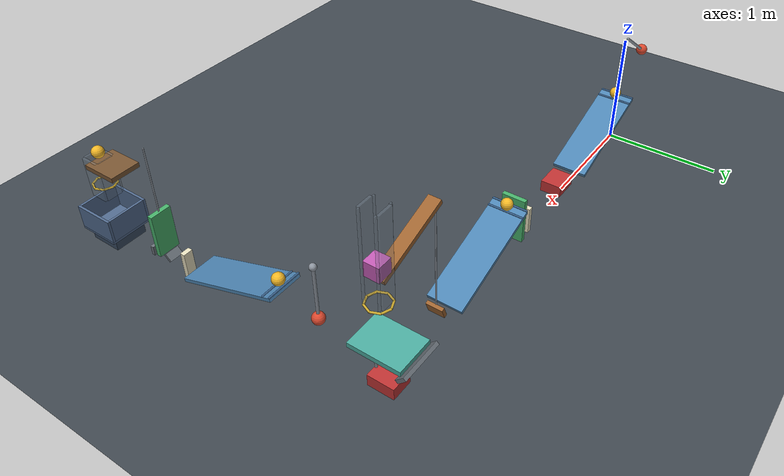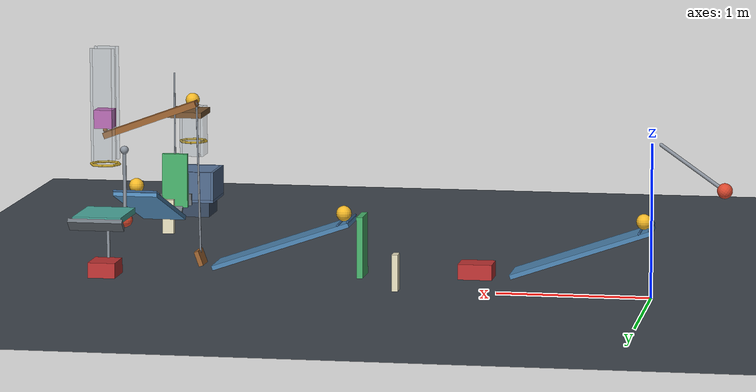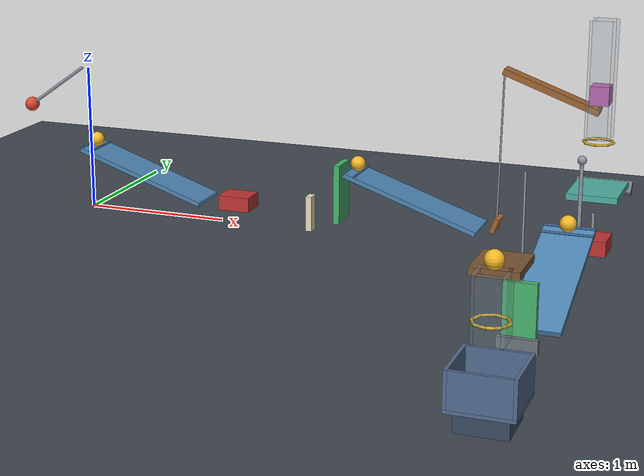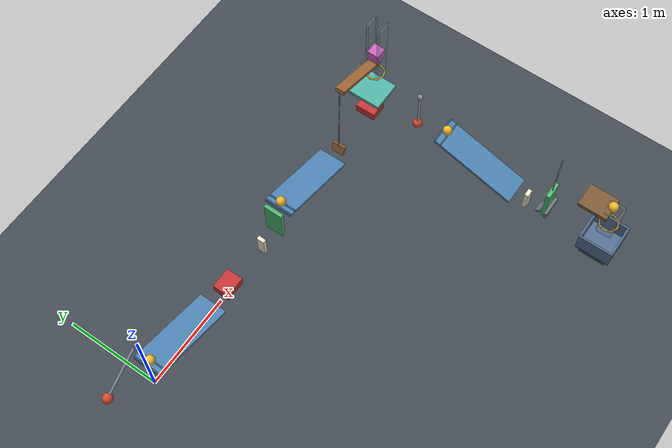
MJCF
<mujoco model="revised_passive_chain_reaction">
  <!-- SI units. The start keyframe uses the initial poses and zero velocities. -->
  <!-- Contact solref approximates restitution 0.05; MuJoCo has no direct restitution attribute. -->
  <!-- This revision has not been simulation-validated. -->
  <!-- Rings are octagonal capsule approximations with a 0.16 m inscribed clear diameter. -->

  <compiler angle="degree" autolimits="true" inertiafromgeom="true"/>
  <option timestep="0.002" gravity="0 0 -9.81" integrator="implicitfast" cone="elliptic" iterations="100" tolerance="1e-9"/>
  <size njmax="3000" nconmax="1000"/>

  <visual>
    <headlight ambient="0.4 0.4 0.4" diffuse="0.7 0.7 0.7" specular="0.2 0.2 0.2"/>
    <map znear="0.01" zfar="50"/>
  </visual>

  <worldbody>
    <light name="overhead_light" pos="2 -1 6" dir="0 0 -1" directional="true"/>
    <camera name="overview" pos="7 -8 6" xyaxes="0.8 0.6 0 -0.3 0.4 0.866"/>
    <geom name="floor" type="plane" size="10 10 0.1" friction="0.68 0.001 0.0001" solref="0.006 0.6901" solimp="0.95 0.99 0.001" rgba="0.25 0.28 0.31 1"/>

    <body name="pendulum1" pos="-0.055 0 0.99588" quat="0.8870108 0 0.4617486 0">
      <joint name="pendulum1_hinge" type="hinge" axis="0 1 0" range="-75 0" damping="0.04"/>
      <geom name="pendulum1_rod" type="capsule" fromto="0 0 0 0 0 -0.50" size="0.012" mass="0.05" friction="0.68 0.001 0.0001" solref="0.006 0.6901" rgba="0.55 0.58 0.62 1"/>
      <geom name="pendulum1_bob" type="sphere" pos="0 0 -0.50" size="0.05" mass="0.35" friction="0.68 0.001 0.0001" solref="0.006 0.6901" rgba="0.85 0.28 0.18 1"/>
    </body>

    <body name="ball1" pos="0.049371 0 0.49588">
      <freejoint name="ball1_free"/>
      <geom name="ball1_geom" type="sphere" size="0.05" mass="0.20" friction="0.68 0.001 0.0001" solref="0.006 0.6901" solimp="0.95 0.99 0.001" rgba="0.95 0.72 0.15 1"/>
    </body>

    <!-- Ramp low-end top surfaces are at z = 0.15 m. -->
    <body name="ramp1" pos="0.444238 0 0.290462" quat="0.9862856 0 0.1650476 0">
      <geom name="ramp1_surface" type="box" size="0.475 0.15 0.015" friction="0.68 0.001 0.0001" solref="0.006 0.6901" rgba="0.30 0.52 0.70 1"/>
      <geom name="ramp1_seat_front" type="capsule" fromto="-0.405 -0.145 0.018 -0.405 0.145 0.018" size="0.008" friction="0.68 0.001 0.0001" solref="0.006 0.6901" rgba="0.22 0.38 0.55 1"/>
      <geom name="ramp1_seat_back" type="capsule" fromto="-0.475 -0.145 0.018 -0.475 0.145 0.018" size="0.008" friction="0.68 0.001 0.0001" solref="0.006 0.6901" rgba="0.22 0.38 0.55 1"/>
    </body>

    <body name="cart1" pos="1.128243 0 0.15">
      <joint name="cart1_slide" type="slide" axis="1 0 0" range="0 0.40" damping="0.20"/>
      <geom name="cart1_geom" type="box" size="0.11 0.09 0.05" mass="0.50" friction="0.68 0.001 0.0001" solref="0.006 0.6901" rgba="0.75 0.20 0.20 1"/>
    </body>

    <body name="domino1" pos="1.658243 0 0.12">
      <freejoint name="domino1_free"/>
      <geom name="domino1_geom" type="box" size="0.02 0.04 0.12" mass="0.25" friction="0.68 0.001 0.0001" solref="0.006 0.6901" solimp="0.95 0.99 0.001" rgba="0.92 0.89 0.76 1"/>
    </body>

    <!-- Bottom-hinged flap: gravity assists its rotation after the domino strikes. -->
    <body name="flap1" pos="1.878243 0 0.09">
      <joint name="flap1_hinge" type="hinge" axis="0 1 0" range="0 65" damping="0.04" solreflimit="0.004 1"/>
      <geom name="flap1_panel" type="box" pos="0 0 0.20" size="0.02 0.10 0.20" mass="0.30" friction="0.68 0.001 0.0001" solref="0.006 0.6901" rgba="0.28 0.70 0.42 1"/>
    </body>

    <body name="ball2" pos="1.997614 0 0.49588">
      <freejoint name="ball2_free"/>
      <geom name="ball2_geom" type="sphere" size="0.05" mass="0.20" friction="0.68 0.001 0.0001" solref="0.006 0.6901" solimp="0.95 0.99 0.001" rgba="0.95 0.72 0.15 1"/>
    </body>

    <body name="ramp2" pos="2.392481 0 0.290462" quat="0.9862856 0 0.1650476 0">
      <geom name="ramp2_surface" type="box" size="0.475 0.15 0.015" friction="0.68 0.001 0.0001" solref="0.006 0.6901" rgba="0.30 0.52 0.70 1"/>
      <geom name="ramp2_seat_front" type="capsule" fromto="-0.405 -0.145 0.018 -0.405 0.145 0.018" size="0.008" friction="0.68 0.001 0.0001" solref="0.006 0.6901" rgba="0.22 0.38 0.55 1"/>
      <geom name="ramp2_seat_back" type="capsule" fromto="-0.475 -0.145 0.018 -0.475 0.145 0.018" size="0.008" friction="0.68 0.001 0.0001" solref="0.006 0.6901" rgba="0.22 0.38 0.55 1"/>
    </body>

    <!-- A rigid input arm reaches the low ramp exit. -->
    <!-- The spring assists lifting, but the carried block holds the initial lower stop. -->
    <body name="seesaw1" pos="3.271486 0 1.08" quat="0.9848078 0 0.1736482 0">
      <joint name="seesaw1_hinge" type="hinge" axis="0 -1 0" range="0 40" damping="0.04" stiffness="0.10" springref="567" solreflimit="0.004 1"/>
      <geom name="seesaw1_beam" type="box" size="0.325 0.05 0.02" mass="0.540" friction="0.68 0.001 0.0001" solref="0.006 0.6901" rgba="0.62 0.39 0.19 1"/>
      <geom name="seesaw1_input_arm" type="capsule" fromto="-0.325 0 0 0.00237 0 -0.956887" size="0.006" mass="0.001" friction="0.68 0.001 0.0001" solref="0.006 0.6901" rgba="0.55 0.58 0.62 1"/>
      <geom name="seesaw1_input_pad" type="box" pos="0.00237 0 -0.956887" size="0.015 0.07 0.05" mass="0.005" friction="0.68 0.001 0.0001" solref="0.006 0.6901" rgba="0.62 0.39 0.19 1"/>
      <geom name="seesaw1_launch_pad" type="sphere" pos="0.311856 0 0.033692" size="0.015" mass="0.004" friction="0.68 0.001 0.0001" solref="0.006 0.6901" rgba="0.62 0.39 0.19 1"/>
    </body>

    <body name="block1" pos="3.576054 0 1.0800">
      <freejoint name="block1_free"/>
      <geom name="block1_geom" type="box" size="0.06 0.06 0.06" mass="0.35" friction="0.68 0.001 0.0001" solref="0.006 0.6901" solimp="0.95 0.99 0.001" rgba="0.78 0.36 0.72 1"/>
    </body>

    <!-- Separate guide body keeps the ring body's bounds and center correct. -->
    <!-- Corner posts leave a physical slot for the 0.10 m wide seesaw beam. -->
    <body name="block1_guide" pos="3.576054 0 1.1750">
      <geom name="block1_guide_xplus_front" type="box" pos="0.0705 0.0605 0" size="0.01 0.005 0.37" friction="0.68 0.001 0.0001" solref="0.006 0.6901" rgba="0.55 0.62 0.68 0.25"/>
      <geom name="block1_guide_xplus_back" type="box" pos="0.0705 -0.0605 0" size="0.01 0.005 0.37" friction="0.68 0.001 0.0001" solref="0.006 0.6901" rgba="0.55 0.62 0.68 0.25"/>
      <geom name="block1_guide_xminus_front" type="box" pos="-0.0705 0.0605 0" size="0.01 0.005 0.37" friction="0.68 0.001 0.0001" solref="0.006 0.6901" rgba="0.55 0.62 0.68 0.25"/>
      <geom name="block1_guide_xminus_back" type="box" pos="-0.0705 -0.0605 0" size="0.01 0.005 0.37" friction="0.68 0.001 0.0001" solref="0.006 0.6901" rgba="0.55 0.62 0.68 0.25"/>
      <geom name="block1_guide_yplus" type="box" pos="0 0.0705 0" size="0.0605 0.01 0.37" friction="0.68 0.001 0.0001" solref="0.006 0.6901" rgba="0.55 0.62 0.68 0.25"/>
      <geom name="block1_guide_yminus" type="box" pos="0 -0.0705 0" size="0.0605 0.01 0.37" friction="0.68 0.001 0.0001" solref="0.006 0.6901" rgba="0.55 0.62 0.68 0.25"/>
    </body>

    <body name="ring1" pos="3.576054 0 0.7800">
      <geom name="ring1_segment01" type="capsule" fromto="0.09525 0 0 0.067352 0.067352 0" size="0.008" friction="0.68 0.001 0.0001" solref="0.006 0.6901" rgba="0.80 0.66 0.18 1"/>
      <geom name="ring1_segment02" type="capsule" fromto="0.067352 0.067352 0 0 0.09525 0" size="0.008" friction="0.68 0.001 0.0001" solref="0.006 0.6901" rgba="0.80 0.66 0.18 1"/>
      <geom name="ring1_segment03" type="capsule" fromto="0 0.09525 0 -0.067352 0.067352 0" size="0.008" friction="0.68 0.001 0.0001" solref="0.006 0.6901" rgba="0.80 0.66 0.18 1"/>
      <geom name="ring1_segment04" type="capsule" fromto="-0.067352 0.067352 0 -0.09525 0 0" size="0.008" friction="0.68 0.001 0.0001" solref="0.006 0.6901" rgba="0.80 0.66 0.18 1"/>
      <geom name="ring1_segment05" type="capsule" fromto="-0.09525 0 0 -0.067352 -0.067352 0" size="0.008" friction="0.68 0.001 0.0001" solref="0.006 0.6901" rgba="0.80 0.66 0.18 1"/>
      <geom name="ring1_segment06" type="capsule" fromto="-0.067352 -0.067352 0 0 -0.09525 0" size="0.008" friction="0.68 0.001 0.0001" solref="0.006 0.6901" rgba="0.80 0.66 0.18 1"/>
      <geom name="ring1_segment07" type="capsule" fromto="0 -0.09525 0 0.067352 -0.067352 0" size="0.008" friction="0.68 0.001 0.0001" solref="0.006 0.6901" rgba="0.80 0.66 0.18 1"/>
      <geom name="ring1_segment08" type="capsule" fromto="0.067352 -0.067352 0 0.09525 0 0" size="0.008" friction="0.68 0.001 0.0001" solref="0.006 0.6901" rgba="0.80 0.66 0.18 1"/>
    </body>

    <!-- A retractable support wedge holds the door without hinge stiction. -->
    <body name="door1" pos="3.576054 -0.15 0.4500">
      <joint name="door1_hinge" type="hinge" axis="-1 0 0" range="0 70" damping="0.04" solreflimit="0.004 1"/>
      <geom name="door1_panel" type="box" pos="0 0.21 0" size="0.16 0.21 0.02" mass="0.45" friction="0.68 0.001 0.0001" solref="0.006 0.6901" rgba="0.30 0.68 0.63 1"/>
    </body>

    <body name="door1_latch" pos="3.576054 0.285 0.423787">
      <joint name="door1_latch_slide" type="slide" axis="0 1 0" range="0 0.06" damping="0.20" frictionloss="0.65" solreffriction="0.002 1" solimpfriction="0.999 0.999 0.0001"/>
      <geom name="door1_latch_wedge" type="box" quat="0.9238795 0.3826834 0 0" size="0.18 0.045 0.015" mass="0.05" friction="0.68 0.001 0.0001" solref="0.006 0.6901" rgba="0.42 0.45 0.48 1"/>
    </body>

    <!-- The lower cart avoids the former shallow-angle, self-locking door contact. -->
    <!-- Its lightweight rigid post reaches the second pendulum's bob. -->
    <body name="cart2" pos="3.576054 0.05 0.10">
      <joint name="cart2_slide" type="slide" axis="0 -1 0" range="0 0.42" damping="0.20"/>
      <geom name="cart2_geom" type="box" size="0.09 0.11 0.05" mass="0.497" friction="0.68 0.001 0.0001" solref="0.006 0.6901" rgba="0.75 0.20 0.20 1"/>
      <geom name="cart2_bob_striker" type="capsule" fromto="0 -0.10 0 0 -0.10 0.22" size="0.01" mass="0.003" friction="0.68 0.001 0.0001" solref="0.006 0.6901" rgba="0.55 0.58 0.62 1"/>
    </body>

    <!-- Pendulum2 total mass is 0.35 kg, including its bearing hub. -->
    <body name="pendulum2" pos="3.576054 -0.53 0.77">
      <joint name="pendulum2_hinge" type="hinge" axis="-1 0 0" range="0 38" damping="0.04" solreflimit="0.004 1"/>
      <geom name="pendulum2_hub" type="sphere" pos="0 0 0.02" size="0.028" mass="0.20" friction="0.68 0.001 0.0001" solref="0.006 0.6901" rgba="0.55 0.58 0.62 1"/>
      <geom name="pendulum2_rod" type="capsule" fromto="0 0 0 0 0 -0.45" size="0.012" mass="0.03" friction="0.68 0.001 0.0001" solref="0.006 0.6901" rgba="0.55 0.58 0.62 1"/>
      <geom name="pendulum2_bob" type="sphere" pos="0 0 -0.45" size="0.05" mass="0.12" friction="0.68 0.001 0.0001" solref="0.006 0.6901" rgba="0.85 0.28 0.18 1"/>
    </body>

    <body name="ball3" pos="3.576054 -0.87105 0.49588">
      <freejoint name="ball3_free"/>
      <geom name="ball3_geom" type="sphere" size="0.05" mass="0.20" friction="0.68 0.001 0.0001" solref="0.006 0.6901" solimp="0.95 0.99 0.001" rgba="0.95 0.72 0.15 1"/>
    </body>

    <body name="ramp3" pos="3.576054 -1.265917 0.290462" quat="0.6974073 0.1167078 0.1167078 -0.6974073">
      <geom name="ramp3_surface" type="box" size="0.475 0.15 0.015" friction="0.68 0.001 0.0001" solref="0.006 0.6901" rgba="0.30 0.52 0.70 1"/>
      <geom name="ramp3_seat_front" type="capsule" fromto="-0.405 -0.145 0.018 -0.405 0.145 0.018" size="0.008" friction="0.68 0.001 0.0001" solref="0.006 0.6901" rgba="0.22 0.38 0.55 1"/>
      <geom name="ramp3_seat_back" type="capsule" fromto="-0.475 -0.145 0.018 -0.475 0.145 0.018" size="0.008" friction="0.68 0.001 0.0001" solref="0.006 0.6901" rgba="0.22 0.38 0.55 1"/>
    </body>

    <body name="domino2" pos="3.576054 -1.839922 0.12">
      <freejoint name="domino2_free"/>
      <geom name="domino2_geom" type="box" size="0.04 0.02 0.12" mass="0.25" friction="0.68 0.001 0.0001" solref="0.006 0.6901" solimp="0.95 0.99 0.001" rgba="0.92 0.89 0.76 1"/>
    </body>

    <!-- Spring-assisted offset flap, initially held by a retractable pin. -->
    <body name="flap2" pos="3.576054 -2.059922 1.10">
      <joint name="flap2_hinge" type="hinge" axis="-1 0 0" range="0 60" damping="0.04" stiffness="1.5" springref="150" solreflimit="0.004 1"/>
      <geom name="flap2_panel" type="box" pos="0 0 -0.76" size="0.09 0.02 0.19" mass="0.278" friction="0.68 0.001 0.0001" solref="0.006 0.6901" rgba="0.28 0.70 0.42 1"/>
      <geom name="flap2_offset_arm" type="capsule" fromto="0 0 0 0 0 -0.57" size="0.006" mass="0.002" friction="0.68 0.001 0.0001" solref="0.006 0.6901" rgba="0.55 0.58 0.62 1"/>
    </body>

    <!-- The pin can retract far enough to clear the panel without entering the floor. -->
    <body name="flap2_latch" pos="3.576054 -2.094922 0.20">
      <joint name="flap2_latch_slide" type="slide" axis="0 0 -1" range="0 0.093" damping="0.20" frictionloss="0.35" solreffriction="0.002 1" solimpfriction="0.999 0.999 0.0001"/>
      <geom name="flap2_latch_pin" type="box" size="0.11 0.015 0.04" mass="0.020" friction="0.68 0.001 0.0001" solref="0.006 0.6901" rgba="0.42 0.45 0.48 1"/>
      <geom name="flap2_latch_wedge" type="box" pos="0 0.090 -0.070" quat="0.9238795 -0.3826834 0 0" size="0.06 0.035 0.012" mass="0.010" friction="0.68 0.001 0.0001" solref="0.006 0.6901" rgba="0.42 0.45 0.48 1"/>
    </body>

    <body name="ball4" pos="3.576054 -2.649922 0.83">
      <freejoint name="ball4_free"/>
      <geom name="ball4_geom" type="sphere" size="0.05" mass="0.20" friction="0.68 0.001 0.0001" solref="0.006 0.6901" solimp="0.95 0.99 0.001" rgba="0.95 0.72 0.15 1"/>
    </body>

    <body name="shelf1" pos="3.576054 -2.504922 0.76">
      <geom name="shelf1_surface" type="box" size="0.125 0.15 0.02" friction="0.68 0.001 0.0001" solref="0.006 0.6901" rgba="0.48 0.34 0.20 1"/>
    </body>

    <!-- Separate falling-ball guide; it does not alter either ring's bounds. -->
    <body name="ball4_guide" pos="3.576054 -2.669922 0.605">
      <geom name="ball4_guide_xplus" type="box" pos="0.075 0 0" size="0.01 0.075 0.175" friction="0.68 0.001 0.0001" solref="0.006 0.6901" rgba="0.55 0.62 0.68 0.25"/>
      <geom name="ball4_guide_xminus" type="box" pos="-0.075 0 0" size="0.01 0.075 0.175" friction="0.68 0.001 0.0001" solref="0.006 0.6901" rgba="0.55 0.62 0.68 0.25"/>
      <geom name="ball4_guide_yplus" type="box" pos="0 0.075 0" size="0.065 0.01 0.175" friction="0.68 0.001 0.0001" solref="0.006 0.6901" rgba="0.55 0.62 0.68 0.25"/>
      <geom name="ball4_guide_yminus" type="box" pos="0 -0.075 0" size="0.065 0.01 0.175" friction="0.68 0.001 0.0001" solref="0.006 0.6901" rgba="0.55 0.62 0.68 0.25"/>
    </body>

    <body name="ring2" pos="3.576054 -2.669922 0.53">
      <geom name="ring2_segment01" type="capsule" fromto="0.09525 0 0 0.067352 0.067352 0" size="0.008" friction="0.68 0.001 0.0001" solref="0.006 0.6901" rgba="0.80 0.66 0.18 1"/>
      <geom name="ring2_segment02" type="capsule" fromto="0.067352 0.067352 0 0 0.09525 0" size="0.008" friction="0.68 0.001 0.0001" solref="0.006 0.6901" rgba="0.80 0.66 0.18 1"/>
      <geom name="ring2_segment03" type="capsule" fromto="0 0.09525 0 -0.067352 0.067352 0" size="0.008" friction="0.68 0.001 0.0001" solref="0.006 0.6901" rgba="0.80 0.66 0.18 1"/>
      <geom name="ring2_segment04" type="capsule" fromto="-0.067352 0.067352 0 -0.09525 0 0" size="0.008" friction="0.68 0.001 0.0001" solref="0.006 0.6901" rgba="0.80 0.66 0.18 1"/>
      <geom name="ring2_segment05" type="capsule" fromto="-0.09525 0 0 -0.067352 -0.067352 0" size="0.008" friction="0.68 0.001 0.0001" solref="0.006 0.6901" rgba="0.80 0.66 0.18 1"/>
      <geom name="ring2_segment06" type="capsule" fromto="-0.067352 -0.067352 0 0 -0.09525 0" size="0.008" friction="0.68 0.001 0.0001" solref="0.006 0.6901" rgba="0.80 0.66 0.18 1"/>
      <geom name="ring2_segment07" type="capsule" fromto="0 -0.09525 0 0.067352 -0.067352 0" size="0.008" friction="0.68 0.001 0.0001" solref="0.006 0.6901" rgba="0.80 0.66 0.18 1"/>
      <geom name="ring2_segment08" type="capsule" fromto="0.067352 -0.067352 0 0.09525 0 0" size="0.008" friction="0.68 0.001 0.0001" solref="0.006 0.6901" rgba="0.80 0.66 0.18 1"/>
    </body>

    <!-- Inner footprint 0.32 m square; walls 0.20 m high and 0.02 m thick. -->
    <!-- Base top 0.13 m gives a resting ball-center height of 0.18 m. -->
    <body name="box1" pos="3.576054 -2.669922 0.12">
      <geom name="box1_base" type="box" size="0.18 0.18 0.01" friction="0.68 0.001 0.0001" solref="0.006 0.6901" solimp="0.95 0.99 0.001" rgba="0.32 0.42 0.56 1"/>
      <geom name="box1_wall_xplus" type="box" pos="0.17 0 0.11" size="0.01 0.18 0.10" friction="0.68 0.001 0.0001" solref="0.006 0.6901" rgba="0.32 0.42 0.56 1"/>
      <geom name="box1_wall_xminus" type="box" pos="-0.17 0 0.11" size="0.01 0.18 0.10" friction="0.68 0.001 0.0001" solref="0.006 0.6901" rgba="0.32 0.42 0.56 1"/>
      <geom name="box1_wall_yplus" type="box" pos="0 0.17 0.11" size="0.16 0.01 0.10" friction="0.68 0.001 0.0001" solref="0.006 0.6901" rgba="0.32 0.42 0.56 1"/>
      <geom name="box1_wall_yminus" type="box" pos="0 -0.17 0.11" size="0.16 0.01 0.10" friction="0.68 0.001 0.0001" solref="0.006 0.6901" rgba="0.32 0.42 0.56 1"/>
      <geom name="box1_support" type="box" pos="0 0 -0.065" size="0.14 0.14 0.055" friction="0.68 0.001 0.0001" solref="0.006 0.6901" rgba="0.22 0.29 0.38 1"/>
    </body>
  </worldbody>

  <!-- Collision-filtered clearance for the offset striking mechanisms. -->
  <contact>
    <exclude name="flap1_ramp2_clearance" body1="flap1" body2="ramp2"/>
    <exclude name="flap2_shelf1_clearance" body1="flap2" body2="shelf1"/>
    <exclude name="flap2_ball4_guide_clearance" body1="flap2" body2="ball4_guide"/>
  </contact>

  <keyframe>
    <key name="start" time="0"/>
  </keyframe>
</mujoco>
